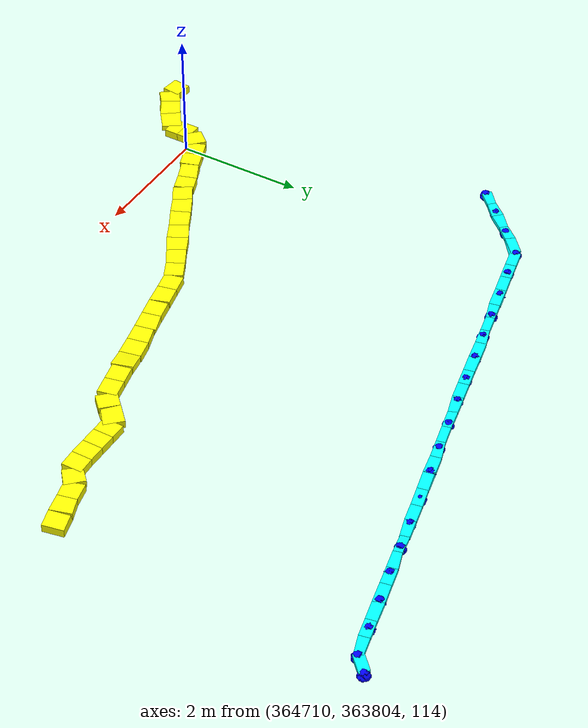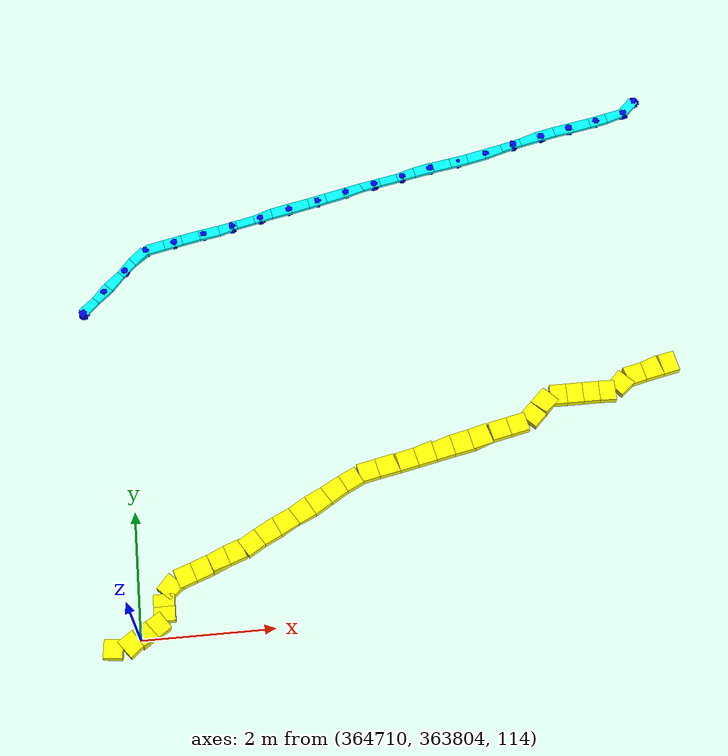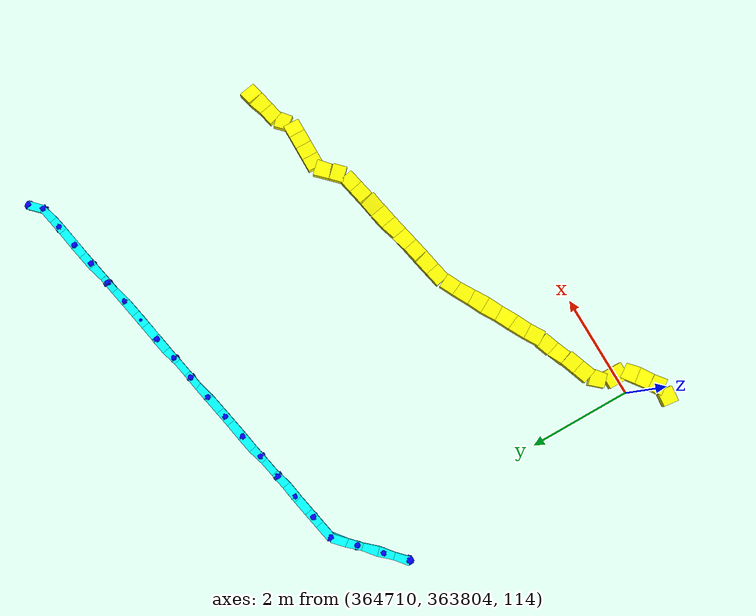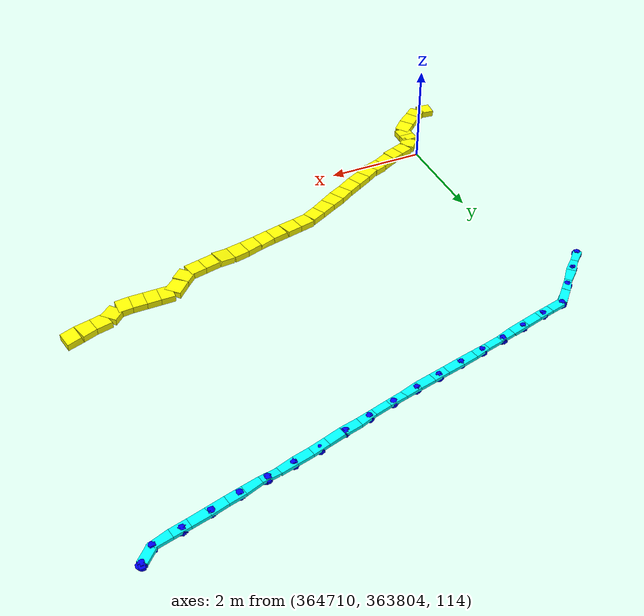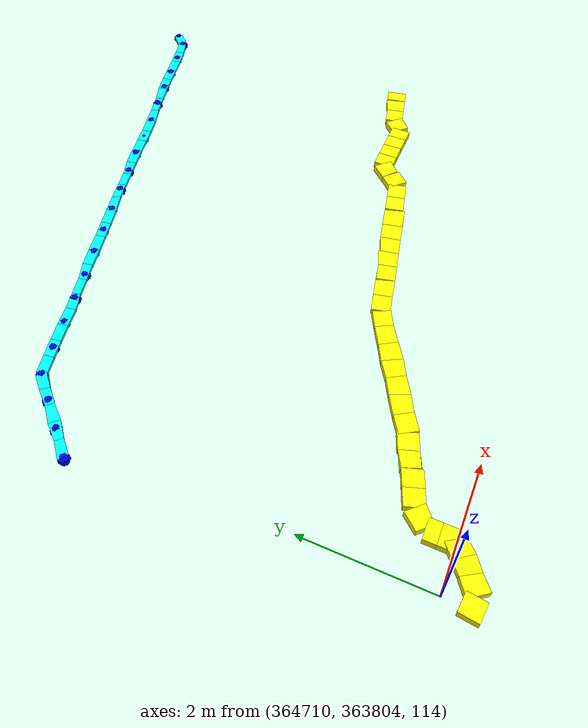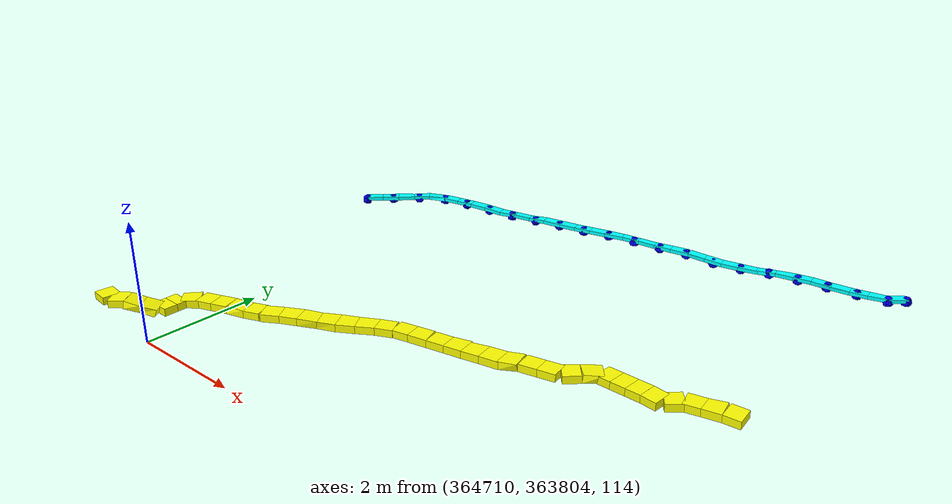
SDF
<sdf version="1.5">
 <world name="default">
  <include><uri>model://sun</uri></include>
  <model name="road_segment_199">
   <static>true</static>
   <pose>364709.69217391306 363803.6573913044 114.83 0 -0.0 -0.11710874450974926</pose>
   <link name="link">
    <collision name="collision">
     <geometry><box><size>0.297691178594991 0.3 0.12</size></box></geometry>
     <surface><friction><ode><mu>0.02</mu><mu2>0.02</mu2></ode></friction></surface>
    </collision>
    <visual name="visual">
     <geometry><box><size>0.297691178594991 0.3 0.12</size></box></geometry>
     <material><ambient>1 1 0 1</ambient><diffuse>1 1 0 1</diffuse><emissive>1 1 0 1</emissive></material>
    </visual>
   </link>
  </model>
  <model name="road_segment_200">
   <static>true</static>
   <pose>364709.94000000006 363803.70666666667 114.83 0 -0.0 0.5880026034132422</pose>
   <link name="link">
    <collision name="collision">
     <geometry><box><size>0.2403700850233988 0.3 0.12</size></box></geometry>
     <surface><friction><ode><mu>0.02</mu><mu2>0.02</mu2></ode></friction></surface>
    </collision>
    <visual name="visual">
     <geometry><box><size>0.2403700850233988 0.3 0.12</size></box></geometry>
     <material><ambient>1 1 0 1</ambient><diffuse>1 1 0 1</diffuse><emissive>1 1 0 1</emissive></material>
    </visual>
   </link>
  </model>
  <model name="road_segment_201">
   <static>true</static>
   <pose>364710.14 363803.83999999997 114.80000000105646 0 0.24461635224423806 0.5880026037490557</pose>
   <link name="link">
    <collision name="collision">
     <geometry><box><size>0.2477453884794676 0.3 0.12</size></box></geometry>
     <surface><friction><ode><mu>0.02</mu><mu2>0.02</mu2></ode></friction></surface>
    </collision>
    <visual name="visual">
     <geometry><box><size>0.2477453884794676 0.3 0.12</size></box></geometry>
     <material><ambient>1 1 0 1</ambient><diffuse>1 1 0 1</diffuse><emissive>1 1 0 1</emissive></material>
    </visual>
   </link>
  </model>
  <model name="road_segment_202">
   <static>true</static>
   <pose>364710.33999999997 363803.9733333333 114.74000000101718 0 0.24461636908578424 0.5880026034132422</pose>
   <link name="link">
    <collision name="collision">
     <geometry><box><size>0.24774538953760467 0.3 0.12</size></box></geometry>
     <surface><friction><ode><mu>0.02</mu><mu2>0.02</mu2></ode></friction></surface>
    </collision>
    <visual name="visual">
     <geometry><box><size>0.24774538953760467 0.3 0.12</size></box></geometry>
     <material><ambient>1 1 0 1</ambient><diffuse>1 1 0 1</diffuse><emissive>1 1 0 1</emissive></material>
    </visual>
   </link>
  </model>
  <model name="road_segment_203">
   <static>true</static>
   <pose>364710.44 363804.14 114.70999999974242 0 1.789857151275509e-09 1.5707963267948966</pose>
   <link name="link">
    <collision name="collision">
     <geometry><box><size>0.20000000001164153 0.3 0.12</size></box></geometry>
     <surface><friction><ode><mu>0.02</mu><mu2>0.02</mu2></ode></friction></surface>
    </collision>
    <visual name="visual">
     <geometry><box><size>0.20000000001164153 0.3 0.12</size></box></geometry>
     <material><ambient>1 1 0 1</ambient><diffuse>1 1 0 1</diffuse><emissive>1 1 0 1</emissive></material>
    </visual>
   </link>
  </model>
  <model name="road_segment_204">
   <static>true</static>
   <pose>364710.44 363804.33999999997 114.70999999956344 0 -0.0 1.5707963267948966</pose>
   <link name="link">
    <collision name="collision">
     <geometry><box><size>0.20000000001164153 0.3 0.12</size></box></geometry>
     <surface><friction><ode><mu>0.02</mu><mu2>0.02</mu2></ode></friction></surface>
    </collision>
    <visual name="visual">
     <geometry><box><size>0.20000000001164153 0.3 0.12</size></box></geometry>
     <material><ambient>1 1 0 1</ambient><diffuse>1 1 0 1</diffuse><emissive>1 1 0 1</emissive></material>
    </visual>
   </link>
  </model>
  <model name="road_segment_205">
   <static>true</static>
   <pose>364710.54000000004 363804.54000000004 114.70999999978172 0 -1.543463690494657e-09 0.7853981633974483</pose>
   <link name="link">
    <collision name="collision">
     <geometry><box><size>0.2828427124910826 0.3 0.12</size></box></geometry>
     <surface><friction><ode><mu>0.02</mu><mu2>0.02</mu2></ode></friction></surface>
    </collision>
    <visual name="visual">
     <geometry><box><size>0.2828427124910826 0.3 0.12</size></box></geometry>
     <material><ambient>1 1 0 1</ambient><diffuse>1 1 0 1</diffuse><emissive>1 1 0 1</emissive></material>
    </visual>
   </link>
  </model>
  <model name="road_segment_206">
   <static>true</static>
   <pose>364710.765 363804.69 114.71 0 -0.0 0.38050637703207846</pose>
   <link name="link">
    <collision name="collision">
     <geometry><box><size>0.2692582403480781 0.3 0.12</size></box></geometry>
     <surface><friction><ode><mu>0.02</mu><mu2>0.02</mu2></ode></friction></surface>
    </collision>
    <visual name="visual">
     <geometry><box><size>0.2692582403480781 0.3 0.12</size></box></geometry>
     <material><ambient>1 1 0 1</ambient><diffuse>1 1 0 1</diffuse><emissive>1 1 0 1</emissive></material>
    </visual>
   </link>
  </model>
  <model name="road_segment_207">
   <static>true</static>
   <pose>364711.015 363804.79 114.71 0 -0.0 0.38050637703207846</pose>
   <link name="link">
    <collision name="collision">
     <geometry><box><size>0.2692582403480781 0.3 0.12</size></box></geometry>
     <surface><friction><ode><mu>0.02</mu><mu2>0.02</mu2></ode></friction></surface>
    </collision>
    <visual name="visual">
     <geometry><box><size>0.2692582403480781 0.3 0.12</size></box></geometry>
     <material><ambient>1 1 0 1</ambient><diffuse>1 1 0 1</diffuse><emissive>1 1 0 1</emissive></material>
    </visual>
   </link>
  </model>
  <model name="road_segment_208">
   <static>true</static>
   <pose>364711.265 363804.89 114.69312500006403 0 0.12469403521727322 0.3805063772327945</pose>
   <link name="link">
    <collision name="collision">
     <geometry><box><size>0.27136518291472306 0.3 0.12</size></box></geometry>
     <surface><friction><ode><mu>0.02</mu><mu2>0.02</mu2></ode></friction></surface>
    </collision>
    <visual name="visual">
     <geometry><box><size>0.27136518291472306 0.3 0.12</size></box></geometry>
     <material><ambient>1 1 0 1</ambient><diffuse>1 1 0 1</diffuse><emissive>1 1 0 1</emissive></material>
    </visual>
   </link>
  </model>
  <model name="road_segment_209">
   <static>true</static>
   <pose>364711.515 363804.99 114.67812500000291 0 -0.01392624907684393 0.38050637703207846</pose>
   <link name="link">
    <collision name="collision">
     <geometry><box><size>0.26928435248537236 0.3 0.12</size></box></geometry>
     <surface><friction><ode><mu>0.02</mu><mu2>0.02</mu2></ode></friction></surface>
    </collision>
    <visual name="visual">
     <geometry><box><size>0.26928435248537236 0.3 0.12</size></box></geometry>
     <material><ambient>1 1 0 1</ambient><diffuse>1 1 0 1</diffuse><emissive>1 1 0 1</emissive></material>
    </visual>
   </link>
  </model>
  <model name="road_segment_210">
   <static>true</static>
   <pose>364711.7685714286 363805.1114285714 114.67999999993889 0 -4.1551265837631844e-10 0.5070985043731174</pose>
   <link name="link">
    <collision name="collision">
     <geometry><box><size>0.29416086114698886 0.3 0.12</size></box></geometry>
     <surface><friction><ode><mu>0.02</mu><mu2>0.02</mu2></ode></friction></surface>
    </collision>
    <visual name="visual">
     <geometry><box><size>0.29416086114698886 0.3 0.12</size></box></geometry>
     <material><ambient>1 1 0 1</ambient><diffuse>1 1 0 1</diffuse><emissive>1 1 0 1</emissive></material>
    </visual>
   </link>
  </model>
  <model name="road_segment_211">
   <static>true</static>
   <pose>364712.02571428573 363805.25428571424 114.67999999999999 0 -0.0 0.5070985044499955</pose>
   <link name="link">
    <collision name="collision">
     <geometry><box><size>0.29416086122613966 0.3 0.12</size></box></geometry>
     <surface><friction><ode><mu>0.02</mu><mu2>0.02</mu2></ode></friction></surface>
    </collision>
    <visual name="visual">
     <geometry><box><size>0.29416086122613966 0.3 0.12</size></box></geometry>
     <material><ambient>1 1 0 1</ambient><diffuse>1 1 0 1</diffuse><emissive>1 1 0 1</emissive></material>
    </visual>
   </link>
  </model>
  <model name="road_segment_212">
   <static>true</static>
   <pose>364712.28285714285 363805.39714285714 114.67142857150631 0 0.05821131119791409 0.5070985043731174</pose>
   <link name="link">
    <collision name="collision">
     <geometry><box><size>0.29465995618072577 0.3 0.12</size></box></geometry>
     <surface><friction><ode><mu>0.02</mu><mu2>0.02</mu2></ode></friction></surface>
    </collision>
    <visual name="visual">
     <geometry><box><size>0.29465995618072577 0.3 0.12</size></box></geometry>
     <material><ambient>1 1 0 1</ambient><diffuse>1 1 0 1</diffuse><emissive>1 1 0 1</emissive></material>
    </visual>
   </link>
  </model>
  <model name="road_segment_213">
   <static>true</static>
   <pose>364712.54000000004 363805.54 114.6614285715063 0 0.009712553734389477 0.5070985043731174</pose>
   <link name="link">
    <collision name="collision">
     <geometry><box><size>0.2941747363335824 0.3 0.12</size></box></geometry>
     <surface><friction><ode><mu>0.02</mu><mu2>0.02</mu2></ode></friction></surface>
    </collision>
    <visual name="visual">
     <geometry><box><size>0.2941747363335824 0.3 0.12</size></box></geometry>
     <material><ambient>1 1 0 1</ambient><diffuse>1 1 0 1</diffuse><emissive>1 1 0 1</emissive></material>
    </visual>
   </link>
  </model>
  <model name="road_segment_214">
   <static>true</static>
   <pose>364712.7971428571 363805.6828571428 114.66 0 -0.0 0.5070985043731174</pose>
   <link name="link">
    <collision name="collision">
     <geometry><box><size>0.29416086114698886 0.3 0.12</size></box></geometry>
     <surface><friction><ode><mu>0.02</mu><mu2>0.02</mu2></ode></friction></surface>
    </collision>
    <visual name="visual">
     <geometry><box><size>0.29416086114698886 0.3 0.12</size></box></geometry>
     <material><ambient>1 1 0 1</ambient><diffuse>1 1 0 1</diffuse><emissive>1 1 0 1</emissive></material>
    </visual>
   </link>
  </model>
  <model name="road_segment_215">
   <static>true</static>
   <pose>364713.0542857143 363805.8257142857 114.66142857136661 0 -0.009712552782095022 0.5070985044499955</pose>
   <link name="link">
    <collision name="collision">
     <geometry><box><size>0.2941747364100159 0.3 0.12</size></box></geometry>
     <surface><friction><ode><mu>0.02</mu><mu2>0.02</mu2></ode></friction></surface>
    </collision>
    <visual name="visual">
     <geometry><box><size>0.2941747364100159 0.3 0.12</size></box></geometry>
     <material><ambient>1 1 0 1</ambient><diffuse>1 1 0 1</diffuse><emissive>1 1 0 1</emissive></material>
    </visual>
   </link>
  </model>
  <model name="road_segment_216">
   <static>true</static>
   <pose>364713.31142857147 363805.96857142856 114.66142857159508 0 0.009712551231549514 0.5070985043731174</pose>
   <link name="link">
    <collision name="collision">
     <geometry><box><size>0.29417473632643104 0.3 0.12</size></box></geometry>
     <surface><friction><ode><mu>0.02</mu><mu2>0.02</mu2></ode></friction></surface>
    </collision>
    <visual name="visual">
     <geometry><box><size>0.29417473632643104 0.3 0.12</size></box></geometry>
     <material><ambient>1 1 0 1</ambient><diffuse>1 1 0 1</diffuse><emissive>1 1 0 1</emissive></material>
    </visual>
   </link>
  </model>
  <model name="road_segment_217">
   <static>true</static>
   <pose>364713.58444444445 363806.0733333333 114.66000000022845 0 1.5411954546133668e-09 0.2267988479950242</pose>
   <link name="link">
    <collision name="collision">
     <geometry><box><size>0.2964814236538446 0.3 0.12</size></box></geometry>
     <surface><friction><ode><mu>0.02</mu><mu2>0.02</mu2></ode></friction></surface>
    </collision>
    <visual name="visual">
     <geometry><box><size>0.2964814236538446 0.3 0.12</size></box></geometry>
     <material><ambient>1 1 0 1</ambient><diffuse>1 1 0 1</diffuse><emissive>1 1 0 1</emissive></material>
    </visual>
   </link>
  </model>
  <model name="road_segment_218">
   <static>true</static>
   <pose>364713.87333333335 363806.14 114.65999999999998 0 -0.0 0.22679884818632465</pose>
   <link name="link">
    <collision name="collision">
     <geometry><box><size>0.29648142366693314 0.3 0.12</size></box></geometry>
     <surface><friction><ode><mu>0.02</mu><mu2>0.02</mu2></ode></friction></surface>
    </collision>
    <visual name="visual">
     <geometry><box><size>0.29648142366693314 0.3 0.12</size></box></geometry>
     <material><ambient>1 1 0 1</ambient><diffuse>1 1 0 1</diffuse><emissive>1 1 0 1</emissive></material>
    </visual>
   </link>
  </model>
  <model name="road_segment_219">
   <static>true</static>
   <pose>364714.1622222222 363806.20666666667 114.658333333376 0 0.01124250136394523 0.22679884803917044</pose>
   <link name="link">
    <collision name="collision">
     <geometry><box><size>0.2965001612962821 0.3 0.12</size></box></geometry>
     <surface><friction><ode><mu>0.02</mu><mu2>0.02</mu2></ode></friction></surface>
    </collision>
    <visual name="visual">
     <geometry><box><size>0.2965001612962821 0.3 0.12</size></box></geometry>
     <material><ambient>1 1 0 1</ambient><diffuse>1 1 0 1</diffuse><emissive>1 1 0 1</emissive></material>
    </visual>
   </link>
  </model>
  <model name="road_segment_220">
   <static>true</static>
   <pose>364714.4511111111 363806.2733333333 114.65333333337603 0 0.022482162339410566 0.2267988479950242</pose>
   <link name="link">
    <collision name="collision">
     <geometry><box><size>0.29655636735263813 0.3 0.12</size></box></geometry>
     <surface><friction><ode><mu>0.02</mu><mu2>0.02</mu2></ode></friction></surface>
    </collision>
    <visual name="visual">
     <geometry><box><size>0.29655636735263813 0.3 0.12</size></box></geometry>
     <material><ambient>1 1 0 1</ambient><diffuse>1 1 0 1</diffuse><emissive>1 1 0 1</emissive></material>
    </visual>
   </link>
  </model>
  <model name="road_segment_221">
   <static>true</static>
   <pose>364714.74 363806.33999999997 114.65 0 9.586337342447775e-14 0.22679884818632465</pose>
   <link name="link">
    <collision name="collision">
     <geometry><box><size>0.29648142366693314 0.3 0.12</size></box></geometry>
     <surface><friction><ode><mu>0.02</mu><mu2>0.02</mu2></ode></friction></surface>
    </collision>
    <visual name="visual">
     <geometry><box><size>0.29648142366693314 0.3 0.12</size></box></geometry>
     <material><ambient>1 1 0 1</ambient><diffuse>1 1 0 1</diffuse><emissive>1 1 0 1</emissive></material>
    </visual>
   </link>
  </model>
  <model name="road_segment_222">
   <static>true</static>
   <pose>364715.0288888889 363806.4066666667 114.64999999999999 0 -4.7931686714354877e-14 0.2267988479950242</pose>
   <link name="link">
    <collision name="collision">
     <geometry><box><size>0.2964814236538446 0.3 0.12</size></box></geometry>
     <surface><friction><ode><mu>0.02</mu><mu2>0.02</mu2></ode></friction></surface>
    </collision>
    <visual name="visual">
     <geometry><box><size>0.2964814236538446 0.3 0.12</size></box></geometry>
     <material><ambient>1 1 0 1</ambient><diffuse>1 1 0 1</diffuse><emissive>1 1 0 1</emissive></material>
    </visual>
   </link>
  </model>
  <model name="road_segment_223">
   <static>true</static>
   <pose>364715.3177777778 363806.4733333333 114.67 0 -0.1341059398653647 0.22679884803917044</pose>
   <link name="link">
    <collision name="collision">
     <geometry><box><size>0.2991675693289258 0.3 0.12</size></box></geometry>
     <surface><friction><ode><mu>0.02</mu><mu2>0.02</mu2></ode></friction></surface>
    </collision>
    <visual name="visual">
     <geometry><box><size>0.2991675693289258 0.3 0.12</size></box></geometry>
     <material><ambient>1 1 0 1</ambient><diffuse>1 1 0 1</diffuse><emissive>1 1 0 1</emissive></material>
    </visual>
   </link>
  </model>
  <model name="road_segment_224">
   <static>true</static>
   <pose>364715.60666666663 363806.54000000004 114.68999999999998 0 -0.0 0.22679884818632465</pose>
   <link name="link">
    <collision name="collision">
     <geometry><box><size>0.29648142366693314 0.3 0.12</size></box></geometry>
     <surface><friction><ode><mu>0.02</mu><mu2>0.02</mu2></ode></friction></surface>
    </collision>
    <visual name="visual">
     <geometry><box><size>0.29648142366693314 0.3 0.12</size></box></geometry>
     <material><ambient>1 1 0 1</ambient><diffuse>1 1 0 1</diffuse><emissive>1 1 0 1</emissive></material>
    </visual>
   </link>
  </model>
  <model name="road_segment_225">
   <static>true</static>
   <pose>364715.89555555553 363806.6066666667 114.68999999999998 0 -4.7931686714354877e-14 0.2267988479950242</pose>
   <link name="link">
    <collision name="collision">
     <geometry><box><size>0.2964814236538446 0.3 0.12</size></box></geometry>
     <surface><friction><ode><mu>0.02</mu><mu2>0.02</mu2></ode></friction></surface>
    </collision>
    <visual name="visual">
     <geometry><box><size>0.2964814236538446 0.3 0.12</size></box></geometry>
     <material><ambient>1 1 0 1</ambient><diffuse>1 1 0 1</diffuse><emissive>1 1 0 1</emissive></material>
    </visual>
   </link>
  </model>
  <model name="road_segment_226">
   <static>true</static>
   <pose>364716.14 363806.74 114.69 0 -0.0 0.7853981632519291</pose>
   <link name="link">
    <collision name="collision">
     <geometry><box><size>0.2828427124499236 0.3 0.12</size></box></geometry>
     <surface><friction><ode><mu>0.02</mu><mu2>0.02</mu2></ode></friction></surface>
    </collision>
    <visual name="visual">
     <geometry><box><size>0.2828427124499236 0.3 0.12</size></box></geometry>
     <material><ambient>1 1 0 1</ambient><diffuse>1 1 0 1</diffuse><emissive>1 1 0 1</emissive></material>
    </visual>
   </link>
  </model>
  <model name="road_segment_227">
   <static>true</static>
   <pose>364716.33999999997 363806.93999999994 114.67999999967257 0 0.07059318158361509 0.7853981633974483</pose>
   <link name="link">
    <collision name="collision">
     <geometry><box><size>0.2835489376377674 0.3 0.12</size></box></geometry>
     <surface><friction><ode><mu>0.1</mu><mu2>0.1</mu2></ode></friction></surface>
    </collision>
    <visual name="visual">
     <geometry><box><size>0.2835489376377674 0.3 0.12</size></box></geometry>
     <material><ambient>1 1 0 1</ambient><diffuse>1 1 0 1</diffuse><emissive>1 1 0 1</emissive></material>
    </visual>
   </link>
  </model>
  <model name="road_segment_228">
   <static>true</static>
   <pose>364716.565 363807.04 114.66999999948051 0 -1.0826965990418103e-09 0.0</pose>
   <link name="link">
    <collision name="collision">
     <geometry><box><size>0.25 0.3 0.12</size></box></geometry>
     <surface><friction><ode><mu>0.2</mu><mu2>0.2</mu2></ode></friction></surface>
    </collision>
    <visual name="visual">
     <geometry><box><size>0.25 0.3 0.12</size></box></geometry>
     <material><ambient>1 1 0 1</ambient><diffuse>1 1 0 1</diffuse><emissive>1 1 0 1</emissive></material>
    </visual>
   </link>
  </model>
  <model name="road_segment_229">
   <static>true</static>
   <pose>364716.815 363807.04 114.66999999961584 0 -0.0 0.0</pose>
   <link name="link">
    <collision name="collision">
     <geometry><box><size>0.25 0.3 0.12</size></box></geometry>
     <surface><friction><ode><mu>0.2</mu><mu2>0.2</mu2></ode></friction></surface>
    </collision>
    <visual name="visual">
     <geometry><box><size>0.25 0.3 0.12</size></box></geometry>
     <material><ambient>1 1 0 1</ambient><diffuse>1 1 0 1</diffuse><emissive>1 1 0 1</emissive></material>
    </visual>
   </link>
  </model>
  <model name="road_segment_230">
   <static>true</static>
   <pose>364717.065 363807.04 114.66999999961584 0 -0.0 0.0</pose>
   <link name="link">
    <collision name="collision">
     <geometry><box><size>0.25 0.3 0.12</size></box></geometry>
     <surface><friction><ode><mu>0.02</mu><mu2>0.02</mu2></ode></friction></surface>
    </collision>
    <visual name="visual">
     <geometry><box><size>0.25 0.3 0.12</size></box></geometry>
     <material><ambient>1 1 0 1</ambient><diffuse>1 1 0 1</diffuse><emissive>1 1 0 1</emissive></material>
    </visual>
   </link>
  </model>
  <model name="road_segment_231">
   <static>true</static>
   <pose>364717.315 363807.04 114.65999999996508 0 0.07982998293602146 0.0</pose>
   <link name="link">
    <collision name="collision">
     <geometry><box><size>0.25079872402398734 0.3 0.12</size></box></geometry>
     <surface><friction><ode><mu>0.02</mu><mu2>0.02</mu2></ode></friction></surface>
    </collision>
    <visual name="visual">
     <geometry><box><size>0.25079872402398734 0.3 0.12</size></box></geometry>
     <material><ambient>1 1 0 1</ambient><diffuse>1 1 0 1</diffuse><emissive>1 1 0 1</emissive></material>
    </visual>
   </link>
  </model>
  <model name="road_segment_232">
   <static>true</static>
   <pose>364717.54000000004 363807.14 114.65000000015716 0 1.111324002931358e-09 0.7853981633974483</pose>
   <link name="link">
    <collision name="collision">
     <geometry><box><size>0.2828427124910826 0.3 0.12</size></box></geometry>
     <surface><friction><ode><mu>0.2</mu><mu2>0.2</mu2></ode></friction></surface>
    </collision>
    <visual name="visual">
     <geometry><box><size>0.2828427124910826 0.3 0.12</size></box></geometry>
     <material><ambient>1 1 0 1</ambient><diffuse>1 1 0 1</diffuse><emissive>1 1 0 1</emissive></material>
    </visual>
   </link>
  </model>
  <model name="road_segment_233">
   <static>true</static>
   <pose>364717.7733333333 363807.2733333333 114.64999999999999 0 5.169957796119671e-14 0.24497866307550445</pose>
   <link name="link">
    <collision name="collision">
     <geometry><box><size>0.2748737083669814 0.3 0.12</size></box></geometry>
     <surface><friction><ode><mu>0.02</mu><mu2>0.02</mu2></ode></friction></surface>
    </collision>
    <visual name="visual">
     <geometry><box><size>0.2748737083669814 0.3 0.12</size></box></geometry>
     <material><ambient>1 1 0 1</ambient><diffuse>1 1 0 1</diffuse><emissive>1 1 0 1</emissive></material>
    </visual>
   </link>
  </model>
  <model name="road_segment_234">
   <static>true</static>
   <pose>364718.04000000004 363807.33999999997 114.64999999999999 0 -0.0 0.24497866328094325</pose>
   <link name="link">
    <collision name="collision">
     <geometry><box><size>0.2748737083810988 0.3 0.12</size></box></geometry>
     <surface><friction><ode><mu>0.02</mu><mu2>0.02</mu2></ode></friction></surface>
    </collision>
    <visual name="visual">
     <geometry><box><size>0.2748737083810988 0.3 0.12</size></box></geometry>
     <material><ambient>1 1 0 1</ambient><diffuse>1 1 0 1</diffuse><emissive>1 1 0 1</emissive></material>
    </visual>
   </link>
  </model>
  <model name="road_segment_235">
   <static>true</static>
   <pose>364718.30666666664 363807.4066666667 114.63500000014407 0 0.10871074723531096 0.24497866307550445</pose>
   <link name="link">
    <collision name="collision">
     <geometry><box><size>0.2765059773931247 0.3 0.12</size></box></geometry>
     <surface><friction><ode><mu>0.02</mu><mu2>0.02</mu2></ode></friction></surface>
    </collision>
    <visual name="visual">
     <geometry><box><size>0.2765059773931247 0.3 0.12</size></box></geometry>
     <material><ambient>1 1 0 1</ambient><diffuse>1 1 0 1</diffuse><emissive>1 1 0 1</emissive></material>
    </visual>
   </link>
  </model>
  <model name="normal_astar_segment_173">
   <static>true</static>
   <pose>364709.54000000004 363809.14 114.72999999955762 0 -3.128076364144103e-09 0.7853981633974483</pose>
   <link name="link">
    <visual name="visual">
     <geometry><box><size>0.2828427124910826 0.15 0.06</size></box></geometry>
     <material><ambient>0 1 1 1</ambient><diffuse>0 1 1 1</diffuse><emissive>0 1 1 1</emissive></material>
    </visual>
   </link>
  </model>
  <model name="normal_astar_segment_174">
   <static>true</static>
   <pose>364709.74 363809.33999999997 114.72999999999999 0 -0.0 0.7853981633974483</pose>
   <link name="link">
    <visual name="visual">
     <geometry><box><size>0.2828427124910826 0.15 0.06</size></box></geometry>
     <material><ambient>0 1 1 1</ambient><diffuse>0 1 1 1</diffuse><emissive>0 1 1 1</emissive></material>
    </visual>
   </link>
  </model>
  <model name="normal_astar_segment_175">
   <static>true</static>
   <pose>364709.94 363809.54 114.72999999999999 0 -0.0 0.7853981633974483</pose>
   <link name="link">
    <visual name="visual">
     <geometry><box><size>0.2828427124087646 0.15 0.06</size></box></geometry>
     <material><ambient>0 1 1 1</ambient><diffuse>0 1 1 1</diffuse><emissive>0 1 1 1</emissive></material>
    </visual>
   </link>
  </model>
  <model name="normal_astar_segment_176">
   <static>true</static>
   <pose>364710.14 363809.74 114.72999999999999 0 -0.0 0.7853981633974483</pose>
   <link name="link">
    <visual name="visual">
     <geometry><box><size>0.2828427124910826 0.15 0.06</size></box></geometry>
     <material><ambient>0 1 1 1</ambient><diffuse>0 1 1 1</diffuse><emissive>0 1 1 1</emissive></material>
    </visual>
   </link>
  </model>
  <model name="normal_astar_segment_177">
   <static>true</static>
   <pose>364710.33999999997 363809.93999999994 114.71000000000436 0 0.14048970171517808 0.7853981633974483</pose>
   <link name="link">
    <visual name="visual">
     <geometry><box><size>0.2856571371567925 0.15 0.06</size></box></geometry>
     <material><ambient>0 1 1 1</ambient><diffuse>0 1 1 1</diffuse><emissive>0 1 1 1</emissive></material>
    </visual>
   </link>
  </model>
  <model name="normal_astar_segment_178">
   <static>true</static>
   <pose>364710.58444444445 363810.0733333333 114.69000000000436 0 2.938212395589954e-11 0.2267988479950242</pose>
   <link name="link">
    <visual name="visual">
     <geometry><box><size>0.2964814236538446 0.15 0.06</size></box></geometry>
     <material><ambient>0 1 1 1</ambient><diffuse>0 1 1 1</diffuse><emissive>0 1 1 1</emissive></material>
    </visual>
   </link>
  </model>
  <model name="normal_astar_segment_179">
   <static>true</static>
   <pose>364710.87333333335 363810.14 114.69 0 9.586337342447775e-14 0.22679884818632465</pose>
   <link name="link">
    <visual name="visual">
     <geometry><box><size>0.29648142366693314 0.15 0.06</size></box></geometry>
     <material><ambient>0 1 1 1</ambient><diffuse>0 1 1 1</diffuse><emissive>0 1 1 1</emissive></material>
    </visual>
   </link>
  </model>
  <model name="normal_astar_segment_180">
   <static>true</static>
   <pose>364711.1622222222 363810.20666666667 114.68500000011495 0 0.033716143495793514 0.22679884803917044</pose>
   <link name="link">
    <visual name="visual">
     <geometry><box><size>0.29665002028245435 0.15 0.06</size></box></geometry>
     <material><ambient>0 1 1 1</ambient><diffuse>0 1 1 1</diffuse><emissive>0 1 1 1</emissive></material>
    </visual>
   </link>
  </model>
  <model name="normal_astar_segment_181">
   <static>true</static>
   <pose>364711.4511111111 363810.2733333333 114.67000000011497 0 0.06735580754531535 0.2267988479950242</pose>
   <link name="link">
    <visual name="visual">
     <geometry><box><size>0.29715523650275294 0.15 0.06</size></box></geometry>
     <material><ambient>0 1 1 1</ambient><diffuse>0 1 1 1</diffuse><emissive>0 1 1 1</emissive></material>
    </visual>
   </link>
  </model>
  <model name="normal_astar_segment_182">
   <static>true</static>
   <pose>364711.74 363810.33999999997 114.66000000000001 0 -0.0 0.2267988479950242</pose>
   <link name="link">
    <visual name="visual">
     <geometry><box><size>0.2964814236538446 0.15 0.06</size></box></geometry>
     <material><ambient>0 1 1 1</ambient><diffuse>0 1 1 1</diffuse><emissive>0 1 1 1</emissive></material>
    </visual>
   </link>
  </model>
  <model name="normal_astar_segment_183">
   <static>true</static>
   <pose>364712.0288888889 363810.4066666666 114.66000000000001 0 4.7931686712238874e-14 0.22679884818632465</pose>
   <link name="link">
    <visual name="visual">
     <geometry><box><size>0.29648142366693314 0.15 0.06</size></box></geometry>
     <material><ambient>0 1 1 1</ambient><diffuse>0 1 1 1</diffuse><emissive>0 1 1 1</emissive></material>
    </visual>
   </link>
  </model>
  <model name="normal_astar_segment_184">
   <static>true</static>
   <pose>364712.3177777778 363810.4733333333 114.66499999999998 0 -0.03371614426395402 0.2267988479950242</pose>
   <link name="link">
    <visual name="visual">
     <geometry><box><size>0.29665002034688964 0.15 0.06</size></box></geometry>
     <material><ambient>0 1 1 1</ambient><diffuse>0 1 1 1</diffuse><emissive>0 1 1 1</emissive></material>
    </visual>
   </link>
  </model>
  <model name="normal_astar_segment_185">
   <static>true</static>
   <pose>364712.6066666667 363810.54 114.66999999999997 0 -0.0 0.2267988479950242</pose>
   <link name="link">
    <visual name="visual">
     <geometry><box><size>0.2964814236538446 0.15 0.06</size></box></geometry>
     <material><ambient>0 1 1 1</ambient><diffuse>0 1 1 1</diffuse><emissive>0 1 1 1</emissive></material>
    </visual>
   </link>
  </model>
  <model name="normal_astar_segment_186">
   <static>true</static>
   <pose>364712.8955555556 363810.6066666667 114.66999999999997 0 -4.793168672140823e-14 0.22679884823047092</pose>
   <link name="link">
    <visual name="visual">
     <geometry><box><size>0.2964814236102161 0.15 0.06</size></box></geometry>
     <material><ambient>0 1 1 1</ambient><diffuse>0 1 1 1</diffuse><emissive>0 1 1 1</emissive></material>
    </visual>
   </link>
  </model>
  <model name="normal_astar_segment_187">
   <static>true</static>
   <pose>364713.1844444444 363810.67333333334 114.6722222221813 0 -0.014989510761214532 0.2267988479950242</pose>
   <link name="link">
    <visual name="visual">
     <geometry><box><size>0.2965147343008491 0.15 0.06</size></box></geometry>
     <material><ambient>0 1 1 1</ambient><diffuse>0 1 1 1</diffuse><emissive>0 1 1 1</emissive></material>
    </visual>
   </link>
  </model>
  <model name="normal_astar_segment_188">
   <static>true</static>
   <pose>364713.4733333333 363810.74 114.67722222218131 0 -0.01873609981003762 0.2267988479950242</pose>
   <link name="link">
    <visual name="visual">
     <geometry><box><size>0.29653346989884677 0.15 0.06</size></box></geometry>
     <material><ambient>0 1 1 1</ambient><diffuse>0 1 1 1</diffuse><emissive>0 1 1 1</emissive></material>
    </visual>
   </link>
  </model>
  <model name="normal_astar_segment_189">
   <static>true</static>
   <pose>364713.7622222222 363810.80666666664 114.67999999999999 0 -0.0 0.22679884818632465</pose>
   <link name="link">
    <visual name="visual">
     <geometry><box><size>0.29648142366693314 0.15 0.06</size></box></geometry>
     <material><ambient>0 1 1 1</ambient><diffuse>0 1 1 1</diffuse><emissive>0 1 1 1</emissive></material>
    </visual>
   </link>
  </model>
  <model name="normal_astar_segment_190">
   <static>true</static>
   <pose>364714.0511111111 363810.87333333335 114.67666666680442 0 0.022482161122848426 0.2267988479950242</pose>
   <link name="link">
    <visual name="visual">
     <geometry><box><size>0.2965563673445257 0.15 0.06</size></box></geometry>
     <material><ambient>0 1 1 1</ambient><diffuse>0 1 1 1</diffuse><emissive>0 1 1 1</emissive></material>
    </visual>
   </link>
  </model>
  <model name="normal_astar_segment_191">
   <static>true</static>
   <pose>364714.33999999997 363810.94 114.6666666670125 0 0.04494161947562329 0.22679884803917044</pose>
   <link name="link">
    <visual name="visual">
     <geometry><box><size>0.2967810848288791 0.15 0.06</size></box></geometry>
     <material><ambient>0 1 1 1</ambient><diffuse>0 1 1 1</diffuse><emissive>0 1 1 1</emissive></material>
    </visual>
   </link>
  </model>
  <model name="normal_astar_segment_192">
   <static>true</static>
   <pose>364714.62888888887 363811.00666666665 114.65500000041763 0 0.03371614425423495 0.2267988479950242</pose>
   <link name="link">
    <visual name="visual">
     <geometry><box><size>0.2966500203467924 0.15 0.06</size></box></geometry>
     <material><ambient>0 1 1 1</ambient><diffuse>0 1 1 1</diffuse><emissive>0 1 1 1</emissive></material>
    </visual>
   </link>
  </model>
  <model name="normal_astar_segment_193">
   <static>true</static>
   <pose>364714.91777777777 363811.07333333336 114.65000000020954 0 1.4135533728306367e-09 0.22679884818632465</pose>
   <link name="link">
    <visual name="visual">
     <geometry><box><size>0.29648142366693314 0.15 0.06</size></box></geometry>
     <material><ambient>0 1 1 1</ambient><diffuse>0 1 1 1</diffuse><emissive>0 1 1 1</emissive></material>
    </visual>
   </link>
  </model>
  <model name="normal_astar_segment_194">
   <static>true</static>
   <pose>364715.20666666667 363811.14 114.63611111132857 0 0.09341875053037306 0.2267988479950242</pose>
   <link name="link">
    <visual name="visual">
     <geometry><box><size>0.2977798507050444 0.15 0.06</size></box></geometry>
     <material><ambient>0 1 1 1</ambient><diffuse>0 1 1 1</diffuse><emissive>0 1 1 1</emissive></material>
    </visual>
   </link>
  </model>
  <model name="normal_astar_segment_195">
   <static>true</static>
   <pose>364715.49555555556 363811.20666666667 114.61111111132858 0 0.07481327985635347 0.2267988479950242</pose>
   <link name="link">
    <visual name="visual">
     <geometry><box><size>0.2973130702670756 0.15 0.06</size></box></geometry>
     <material><ambient>0 1 1 1</ambient><diffuse>0 1 1 1</diffuse><emissive>0 1 1 1</emissive></material>
    </visual>
   </link>
  </model>
  <model name="normal_astar_segment_196">
   <static>true</static>
   <pose>364715.78444444446 363811.2733333333 114.60000000000001 0 -4.793168672140823e-14 0.22679884823047092</pose>
   <link name="link">
    <visual name="visual">
     <geometry><box><size>0.2964814236102161 0.15 0.06</size></box></geometry>
     <material><ambient>0 1 1 1</ambient><diffuse>0 1 1 1</diffuse><emissive>0 1 1 1</emissive></material>
    </visual>
   </link>
  </model>
  <model name="normal_astar_segment_197">
   <static>true</static>
   <pose>364716.0733333333 363811.34 114.60000000000001 0 -0.0 0.2267988479950242</pose>
   <link name="link">
    <visual name="visual">
     <geometry><box><size>0.2964814236538446 0.15 0.06</size></box></geometry>
     <material><ambient>0 1 1 1</ambient><diffuse>0 1 1 1</diffuse><emissive>0 1 1 1</emissive></material>
    </visual>
   </link>
  </model>
  <model name="normal_astar_segment_198">
   <static>true</static>
   <pose>364716.3622222222 363811.4066666667 114.61500000000001 0 -0.10084354163262041 0.2267988479950242</pose>
   <link name="link">
    <visual name="visual">
     <geometry><box><size>0.29799535998369264 0.15 0.06</size></box></geometry>
     <material><ambient>0 1 1 1</ambient><diffuse>0 1 1 1</diffuse><emissive>0 1 1 1</emissive></material>
    </visual>
   </link>
  </model>
  <model name="normal_astar_segment_199">
   <static>true</static>
   <pose>364716.6511111111 363811.4733333334 114.63 0 9.586337342447775e-14 0.22679884818632465</pose>
   <link name="link">
    <visual name="visual">
     <geometry><box><size>0.29648142366693314 0.15 0.06</size></box></geometry>
     <material><ambient>0 1 1 1</ambient><diffuse>0 1 1 1</diffuse><emissive>0 1 1 1</emissive></material>
    </visual>
   </link>
  </model>
  <model name="normal_astar_segment_200">
   <static>true</static>
   <pose>364716.94 363811.54000000004 114.62999999999998 0 -0.0 0.2267988479950242</pose>
   <link name="link">
    <visual name="visual">
     <geometry><box><size>0.2964814236538446 0.15 0.06</size></box></geometry>
     <material><ambient>0 1 1 1</ambient><diffuse>0 1 1 1</diffuse><emissive>0 1 1 1</emissive></material>
    </visual>
   </link>
  </model>
  <model name="normal_astar_segment_201">
   <static>true</static>
   <pose>364717.2288888889 363811.6066666667 114.62000000013823 0 0.06735580584495934 0.2267988479950242</pose>
   <link name="link">
    <visual name="visual">
     <geometry><box><size>0.29715523646866854 0.15 0.06</size></box></geometry>
     <material><ambient>0 1 1 1</ambient><diffuse>0 1 1 1</diffuse><emissive>0 1 1 1</emissive></material>
    </visual>
   </link>
  </model>
  <model name="normal_astar_segment_202">
   <static>true</static>
   <pose>364717.51777777774 363811.67333333334 114.60500000013823 0 0.033716145202041865 0.22679884803917044</pose>
   <link name="link">
    <visual name="visual">
     <geometry><box><size>0.2966500202995266 0.15 0.06</size></box></geometry>
     <material><ambient>0 1 1 1</ambient><diffuse>0 1 1 1</diffuse><emissive>0 1 1 1</emissive></material>
    </visual>
   </link>
  </model>
  <model name="normal_astar_segment_203">
   <static>true</static>
   <pose>364717.80666666664 363811.74 114.6 0 -9.586337342447775e-14 0.22679884818632465</pose>
   <link name="link">
    <visual name="visual">
     <geometry><box><size>0.29648142366693314 0.15 0.06</size></box></geometry>
     <material><ambient>0 1 1 1</ambient><diffuse>0 1 1 1</diffuse><emissive>0 1 1 1</emissive></material>
    </visual>
   </link>
  </model>
  <model name="normal_astar_segment_204">
   <static>true</static>
   <pose>364718.09555555554 363811.8066666667 114.60000000000001 0 4.7931686714354877e-14 0.2267988479950242</pose>
   <link name="link">
    <visual name="visual">
     <geometry><box><size>0.2964814236538446 0.15 0.06</size></box></geometry>
     <material><ambient>0 1 1 1</ambient><diffuse>0 1 1 1</diffuse><emissive>0 1 1 1</emissive></material>
    </visual>
   </link>
  </model>
  <model name="normal_astar_segment_205">
   <static>true</static>
   <pose>364718.33999999997 363811.94 114.59500000016588 0 0.03534061753823397 0.7853981632519291</pose>
   <link name="link">
    <visual name="visual">
     <geometry><box><size>0.2830194339252949 0.15 0.06</size></box></geometry>
     <material><ambient>0 1 1 1</ambient><diffuse>0 1 1 1</diffuse><emissive>0 1 1 1</emissive></material>
    </visual>
   </link>
  </model>
  <model name="dijkstra_marker_109">
   <static>true</static>
   <pose>364709.44 363809.04 114.69999999911525 0 0 0</pose>
   <link name="link">
    <visual name="visual">
     <geometry><sphere><radius>0.08</radius></sphere></geometry>
     <material><ambient>0 0 1 1</ambient><diffuse>0 0 1 1</diffuse><emissive>0 0 1 1</emissive></material>
    </visual>
   </link>
  </model>
  <model name="dijkstra_marker_110">
   <static>true</static>
   <pose>364709.7733333333 363809.3733333333 114.69999999999999 0 0 0</pose>
   <link name="link">
    <visual name="visual">
     <geometry><sphere><radius>0.08</radius></sphere></geometry>
     <material><ambient>0 0 1 1</ambient><diffuse>0 0 1 1</diffuse><emissive>0 0 1 1</emissive></material>
    </visual>
   </link>
  </model>
  <model name="dijkstra_marker_111">
   <static>true</static>
   <pose>364710.1066666667 363809.70666666667 114.69999999999999 0 0 0</pose>
   <link name="link">
    <visual name="visual">
     <geometry><sphere><radius>0.08</radius></sphere></geometry>
     <material><ambient>0 0 1 1</ambient><diffuse>0 0 1 1</diffuse><emissive>0 0 1 1</emissive></material>
    </visual>
   </link>
  </model>
  <model name="dijkstra_marker_112">
   <static>true</static>
   <pose>364710.44 363810.04 114.66000000000874 0 0 0</pose>
   <link name="link">
    <visual name="visual">
     <geometry><sphere><radius>0.08</radius></sphere></geometry>
     <material><ambient>0 0 1 1</ambient><diffuse>0 0 1 1</diffuse><emissive>0 0 1 1</emissive></material>
    </visual>
   </link>
  </model>
  <model name="dijkstra_marker_113">
   <static>true</static>
   <pose>364710.8988235294 363810.1458823529 114.66 0 0 0</pose>
   <link name="link">
    <visual name="visual">
     <geometry><sphere><radius>0.08</radius></sphere></geometry>
     <material><ambient>0 0 1 1</ambient><diffuse>0 0 1 1</diffuse><emissive>0 0 1 1</emissive></material>
    </visual>
   </link>
  </model>
  <model name="dijkstra_marker_114">
   <static>true</static>
   <pose>364711.35764705885 363810.25176470587 114.64235294139989 0 0 0</pose>
   <link name="link">
    <visual name="visual">
     <geometry><sphere><radius>0.08</radius></sphere></geometry>
     <material><ambient>0 0 1 1</ambient><diffuse>0 0 1 1</diffuse><emissive>0 0 1 1</emissive></material>
    </visual>
   </link>
  </model>
  <model name="dijkstra_marker_115">
   <static>true</static>
   <pose>364711.8164705882 363810.3576470588 114.63000000000002 0 0 0</pose>
   <link name="link">
    <visual name="visual">
     <geometry><sphere><radius>0.08</radius></sphere></geometry>
     <material><ambient>0 0 1 1</ambient><diffuse>0 0 1 1</diffuse><emissive>0 0 1 1</emissive></material>
    </visual>
   </link>
  </model>
  <model name="dijkstra_marker_116">
   <static>true</static>
   <pose>364712.27529411763 363810.46352941176 114.63176470580328 0 0 0</pose>
   <link name="link">
    <visual name="visual">
     <geometry><sphere><radius>0.08</radius></sphere></geometry>
     <material><ambient>0 0 1 1</ambient><diffuse>0 0 1 1</diffuse><emissive>0 0 1 1</emissive></material>
    </visual>
   </link>
  </model>
  <model name="dijkstra_marker_117">
   <static>true</static>
   <pose>364712.73411764705 363810.5694117647 114.63999999999999 0 0 0</pose>
   <link name="link">
    <visual name="visual">
     <geometry><sphere><radius>0.08</radius></sphere></geometry>
     <material><ambient>0 0 1 1</ambient><diffuse>0 0 1 1</diffuse><emissive>0 0 1 1</emissive></material>
    </visual>
   </link>
  </model>
  <model name="dijkstra_marker_118">
   <static>true</static>
   <pose>364713.1929411765 363810.67529411765 114.63999999999999 0 0 0</pose>
   <link name="link">
    <visual name="visual">
     <geometry><sphere><radius>0.08</radius></sphere></geometry>
     <material><ambient>0 0 1 1</ambient><diffuse>0 0 1 1</diffuse><emissive>0 0 1 1</emissive></material>
    </visual>
   </link>
  </model>
  <model name="dijkstra_marker_119">
   <static>true</static>
   <pose>364713.6517647059 363810.78117647057 114.65 0 0 0</pose>
   <link name="link">
    <visual name="visual">
     <geometry><sphere><radius>0.08</radius></sphere></geometry>
     <material><ambient>0 0 1 1</ambient><diffuse>0 0 1 1</diffuse><emissive>0 0 1 1</emissive></material>
    </visual>
   </link>
  </model>
  <model name="dijkstra_marker_120">
   <static>true</static>
   <pose>364714.1105882353 363810.88705882354 114.645294117922 0 0 0</pose>
   <link name="link">
    <visual name="visual">
     <geometry><sphere><radius>0.08</radius></sphere></geometry>
     <material><ambient>0 0 1 1</ambient><diffuse>0 0 1 1</diffuse><emissive>0 0 1 1</emissive></material>
    </visual>
   </link>
  </model>
  <model name="dijkstra_marker_121">
   <static>true</static>
   <pose>364714.5694117647 363810.99294117646 114.62705882394646 0 0 0</pose>
   <link name="link">
    <visual name="visual">
     <geometry><sphere><radius>0.08</radius></sphere></geometry>
     <material><ambient>0 0 1 1</ambient><diffuse>0 0 1 1</diffuse><emissive>0 0 1 1</emissive></material>
    </visual>
   </link>
  </model>
  <model name="dijkstra_marker_122">
   <static>true</static>
   <pose>364715.0282352941 363811.09882352944 114.62 0 0 0</pose>
   <link name="link">
    <visual name="visual">
     <geometry><sphere><radius>0.08</radius></sphere></geometry>
     <material><ambient>0 0 1 1</ambient><diffuse>0 0 1 1</diffuse><emissive>0 0 1 1</emissive></material>
    </visual>
   </link>
  </model>
  <model name="dijkstra_marker_123">
   <static>true</static>
   <pose>364715.4870588235 363811.20470588235 114.57000000000001 0 0 0</pose>
   <link name="link">
    <visual name="visual">
     <geometry><sphere><radius>0.08</radius></sphere></geometry>
     <material><ambient>0 0 1 1</ambient><diffuse>0 0 1 1</diffuse><emissive>0 0 1 1</emissive></material>
    </visual>
   </link>
  </model>
  <model name="dijkstra_marker_124">
   <static>true</static>
   <pose>364715.94588235294 363811.3105882353 114.57000000000002 0 0 0</pose>
   <link name="link">
    <visual name="visual">
     <geometry><sphere><radius>0.08</radius></sphere></geometry>
     <material><ambient>0 0 1 1</ambient><diffuse>0 0 1 1</diffuse><emissive>0 0 1 1</emissive></material>
    </visual>
   </link>
  </model>
  <model name="dijkstra_marker_125">
   <static>true</static>
   <pose>364716.40470588236 363811.41647058824 114.59470588208383 0 0 0</pose>
   <link name="link">
    <visual name="visual">
     <geometry><sphere><radius>0.08</radius></sphere></geometry>
     <material><ambient>0 0 1 1</ambient><diffuse>0 0 1 1</diffuse><emissive>0 0 1 1</emissive></material>
    </visual>
   </link>
  </model>
  <model name="dijkstra_marker_126">
   <static>true</static>
   <pose>364716.8635294118 363811.5223529412 114.60000000000002 0 0 0</pose>
   <link name="link">
    <visual name="visual">
     <geometry><sphere><radius>0.08</radius></sphere></geometry>
     <material><ambient>0 0 1 1</ambient><diffuse>0 0 1 1</diffuse><emissive>0 0 1 1</emissive></material>
    </visual>
   </link>
  </model>
  <model name="dijkstra_marker_127">
   <static>true</static>
   <pose>364717.32235294115 363811.62823529413 114.58764705910653 0 0 0</pose>
   <link name="link">
    <visual name="visual">
     <geometry><sphere><radius>0.08</radius></sphere></geometry>
     <material><ambient>0 0 1 1</ambient><diffuse>0 0 1 1</diffuse><emissive>0 0 1 1</emissive></material>
    </visual>
   </link>
  </model>
  <model name="dijkstra_marker_128">
   <static>true</static>
   <pose>364717.78117647057 363811.7341176471 114.57000000000001 0 0 0</pose>
   <link name="link">
    <visual name="visual">
     <geometry><sphere><radius>0.08</radius></sphere></geometry>
     <material><ambient>0 0 1 1</ambient><diffuse>0 0 1 1</diffuse><emissive>0 0 1 1</emissive></material>
    </visual>
   </link>
  </model>
  <model name="dijkstra_marker_129">
   <static>true</static>
   <pose>364718.24 363811.84 114.57000000000001 0 0 0</pose>
   <link name="link">
    <visual name="visual">
     <geometry><sphere><radius>0.08</radius></sphere></geometry>
     <material><ambient>0 0 1 1</ambient><diffuse>0 0 1 1</diffuse><emissive>0 0 1 1</emissive></material>
    </visual>
   </link>
  </model>
  <model name="dijkstra_marker_130">
   <static>true</static>
   <pose>364718.44 363812.04 114.5600000003318 0 0 0</pose>
   <link name="link">
    <visual name="visual">
     <geometry><sphere><radius>0.08</radius></sphere></geometry>
     <material><ambient>0 0 1 1</ambient><diffuse>0 0 1 1</diffuse><emissive>0 0 1 1</emissive></material>
    </visual>
   </link>
  </model>
 </world>
</sdf>
